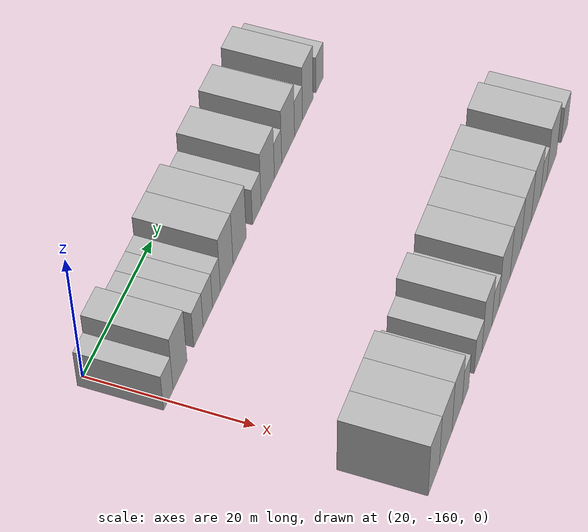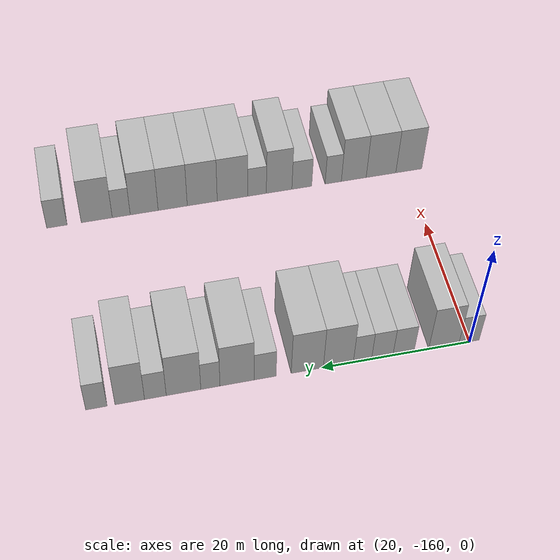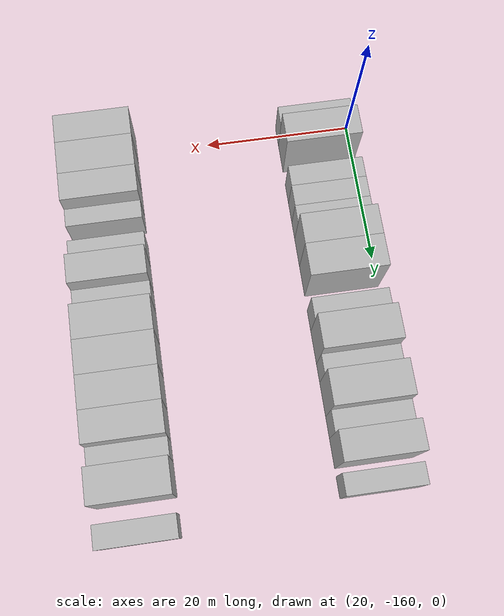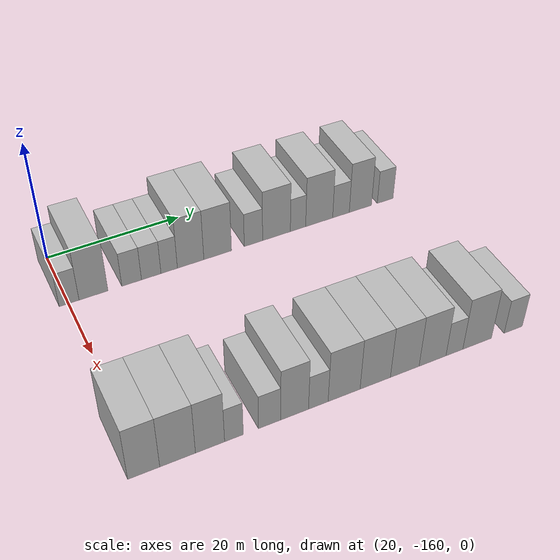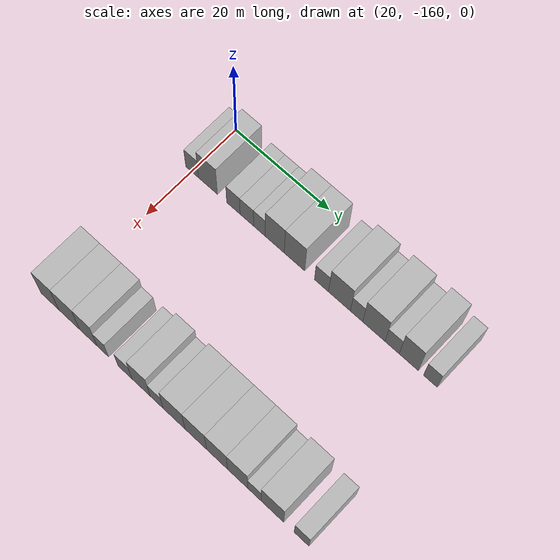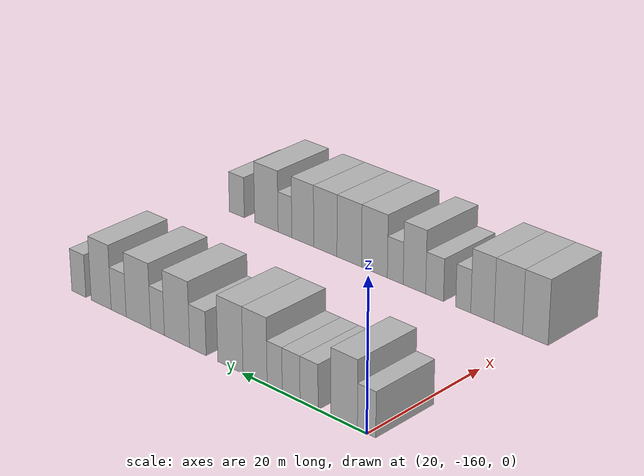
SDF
<sdf version="1.6">
 <world name="default">
  <model name="building_15">
   <static>1</static>
   <pose>25.0000 -159.9158 0 0.000000 0.000000 0.000000</pose>
   <link name="link">
    <pose>0 0 3.00 0 0 0</pose>
    <collision name="collision"><geometry><box><size>10.0000 2.7840 6.0000</size></box></geometry></collision>
    <visual name="visual">
     <cast_shadows>0</cast_shadows>
     <geometry><box><size>10.0000 2.7840 6.0000</size></box></geometry>
     <material>
      <script>
       <uri>model://HANNAS_wall/materials/scripts</uri>
       <uri>model://HANNAS_wall/materials/textures</uri>
       <name>vrc/HANNAS_wall</name>
      </script>
     </material>
    </visual>
   </link>
  </model>
  <model name="building_16">
   <static>1</static>
   <pose>25.0000 -156.4676 0 0.000000 0.000000 0.000000</pose>
   <link name="link">
    <pose>0 0 4.50 0 0 0</pose>
    <collision name="collision"><geometry><box><size>10.0000 4.1124 9.0000</size></box></geometry></collision>
    <visual name="visual">
     <cast_shadows>0</cast_shadows>
     <geometry><box><size>10.0000 4.1124 9.0000</size></box></geometry>
     <material>
      <script>
       <uri>model://HANNAS_wall/materials/scripts</uri>
       <uri>model://HANNAS_wall/materials/textures</uri>
       <name>vrc/HANNAS_wall</name>
      </script>
     </material>
    </visual>
   </link>
  </model>
  <model name="building_17">
   <static>1</static>
   <pose>25.0000 -150.9805 0 0.000000 0.000000 0.000000</pose>
   <link name="link">
    <pose>0 0 3.00 0 0 0</pose>
    <collision name="collision"><geometry><box><size>10.0000 2.8616 6.0000</size></box></geometry></collision>
    <visual name="visual">
     <cast_shadows>0</cast_shadows>
     <geometry><box><size>10.0000 2.8616 6.0000</size></box></geometry>
     <material>
      <script>
       <uri>model://HANNAS_wall/materials/scripts</uri>
       <uri>model://HANNAS_wall/materials/textures</uri>
       <name>vrc/HANNAS_wall</name>
      </script>
     </material>
    </visual>
   </link>
  </model>
  <model name="building_18">
   <static>1</static>
   <pose>25.0000 -148.1120 0 0.000000 0.000000 0.000000</pose>
   <link name="link">
    <pose>0 0 3.00 0 0 0</pose>
    <collision name="collision"><geometry><box><size>10.0000 2.8755 6.0000</size></box></geometry></collision>
    <visual name="visual">
     <cast_shadows>0</cast_shadows>
     <geometry><box><size>10.0000 2.8755 6.0000</size></box></geometry>
     <material>
      <script>
       <uri>model://HANNAS_wall/materials/scripts</uri>
       <uri>model://HANNAS_wall/materials/textures</uri>
       <name>vrc/HANNAS_wall</name>
      </script>
     </material>
    </visual>
   </link>
  </model>
  <model name="building_19">
   <static>1</static>
   <pose>25.0000 -145.4479 0 0.000000 0.000000 0.000000</pose>
   <link name="link">
    <pose>0 0 3.00 0 0 0</pose>
    <collision name="collision"><geometry><box><size>10.0000 2.4528 6.0000</size></box></geometry></collision>
    <visual name="visual">
     <cast_shadows>0</cast_shadows>
     <geometry><box><size>10.0000 2.4528 6.0000</size></box></geometry>
     <material>
      <script>
       <uri>model://HANNAS_wall/materials/scripts</uri>
       <uri>model://HANNAS_wall/materials/textures</uri>
       <name>vrc/HANNAS_wall</name>
      </script>
     </material>
    </visual>
   </link>
  </model>
  <model name="building_20">
   <static>1</static>
   <pose>25.0000 -142.2186 0 0.000000 0.000000 0.000000</pose>
   <link name="link">
    <pose>0 0 4.50 0 0 0</pose>
    <collision name="collision"><geometry><box><size>10.0000 4.0057 9.0000</size></box></geometry></collision>
    <visual name="visual">
     <cast_shadows>0</cast_shadows>
     <geometry><box><size>10.0000 4.0057 9.0000</size></box></geometry>
     <material>
      <script>
       <uri>model://HANNAS_wall/materials/scripts</uri>
       <uri>model://HANNAS_wall/materials/textures</uri>
       <name>vrc/HANNAS_wall</name>
      </script>
     </material>
    </visual>
   </link>
  </model>
  <model name="building_21">
   <static>1</static>
   <pose>25.0000 -138.0832 0 0.000000 0.000000 0.000000</pose>
   <link name="link">
    <pose>0 0 4.50 0 0 0</pose>
    <collision name="collision"><geometry><box><size>10.0000 4.2652 9.0000</size></box></geometry></collision>
    <visual name="visual">
     <cast_shadows>0</cast_shadows>
     <geometry><box><size>10.0000 4.2652 9.0000</size></box></geometry>
     <material>
      <script>
       <uri>model://HANNAS_wall/materials/scripts</uri>
       <uri>model://HANNAS_wall/materials/textures</uri>
       <name>vrc/HANNAS_wall</name>
      </script>
     </material>
    </visual>
   </link>
  </model>
  <model name="building_22">
   <static>1</static>
   <pose>25.0000 -132.5046 0 0.000000 0.000000 0.000000</pose>
   <link name="link">
    <pose>0 0 3.00 0 0 0</pose>
    <collision name="collision"><geometry><box><size>10.0000 2.8920 6.0000</size></box></geometry></collision>
    <visual name="visual">
     <cast_shadows>0</cast_shadows>
     <geometry><box><size>10.0000 2.8920 6.0000</size></box></geometry>
     <material>
      <script>
       <uri>model://HANNAS_wall/materials/scripts</uri>
       <uri>model://HANNAS_wall/materials/textures</uri>
       <name>vrc/HANNAS_wall</name>
      </script>
     </material>
    </visual>
   </link>
  </model>
  <model name="building_23">
   <static>1</static>
   <pose>25.0000 -128.8323 0 0.000000 0.000000 0.000000</pose>
   <link name="link">
    <pose>0 0 4.50 0 0 0</pose>
    <collision name="collision"><geometry><box><size>10.0000 4.4527 9.0000</size></box></geometry></collision>
    <visual name="visual">
     <cast_shadows>0</cast_shadows>
     <geometry><box><size>10.0000 4.4527 9.0000</size></box></geometry>
     <material>
      <script>
       <uri>model://HANNAS_wall/materials/scripts</uri>
       <uri>model://HANNAS_wall/materials/textures</uri>
       <name>vrc/HANNAS_wall</name>
      </script>
     </material>
    </visual>
   </link>
  </model>
  <model name="building_24">
   <static>1</static>
   <pose>25.0000 -125.3593 0 0.000000 0.000000 0.000000</pose>
   <link name="link">
    <pose>0 0 3.00 0 0 0</pose>
    <collision name="collision"><geometry><box><size>10.0000 2.4932 6.0000</size></box></geometry></collision>
    <visual name="visual">
     <cast_shadows>0</cast_shadows>
     <geometry><box><size>10.0000 2.4932 6.0000</size></box></geometry>
     <material>
      <script>
       <uri>model://HANNAS_wall/materials/scripts</uri>
       <uri>model://HANNAS_wall/materials/textures</uri>
       <name>vrc/HANNAS_wall</name>
      </script>
     </material>
    </visual>
   </link>
  </model>
  <model name="building_25">
   <static>1</static>
   <pose>25.0000 -121.8784 0 0.000000 0.000000 0.000000</pose>
   <link name="link">
    <pose>0 0 4.50 0 0 0</pose>
    <collision name="collision"><geometry><box><size>10.0000 4.4687 9.0000</size></box></geometry></collision>
    <visual name="visual">
     <cast_shadows>0</cast_shadows>
     <geometry><box><size>10.0000 4.4687 9.0000</size></box></geometry>
     <material>
      <script>
       <uri>model://HANNAS_wall/materials/scripts</uri>
       <uri>model://HANNAS_wall/materials/textures</uri>
       <name>vrc/HANNAS_wall</name>
      </script>
     </material>
    </visual>
   </link>
  </model>
  <model name="building_26">
   <static>1</static>
   <pose>25.0000 -118.2513 0 0.000000 0.000000 0.000000</pose>
   <link name="link">
    <pose>0 0 3.00 0 0 0</pose>
    <collision name="collision"><geometry><box><size>10.0000 2.7856 6.0000</size></box></geometry></collision>
    <visual name="visual">
     <cast_shadows>0</cast_shadows>
     <geometry><box><size>10.0000 2.7856 6.0000</size></box></geometry>
     <material>
      <script>
       <uri>model://HANNAS_wall/materials/scripts</uri>
       <uri>model://HANNAS_wall/materials/textures</uri>
       <name>vrc/HANNAS_wall</name>
      </script>
     </material>
    </visual>
   </link>
  </model>
  <model name="building_27">
   <static>1</static>
   <pose>25.0000 -114.9687 0 0.000000 0.000000 0.000000</pose>
   <link name="link">
    <pose>0 0 4.50 0 0 0</pose>
    <collision name="collision"><geometry><box><size>10.0000 3.7795 9.0000</size></box></geometry></collision>
    <visual name="visual">
     <cast_shadows>0</cast_shadows>
     <geometry><box><size>10.0000 3.7795 9.0000</size></box></geometry>
     <material>
      <script>
       <uri>model://HANNAS_wall/materials/scripts</uri>
       <uri>model://HANNAS_wall/materials/textures</uri>
       <name>vrc/HANNAS_wall</name>
      </script>
     </material>
    </visual>
   </link>
  </model>
  <model name="building_28">
   <static>1</static>
   <pose>25.0000 -110.7197 0 0.000000 0.000000 0.000000</pose>
   <link name="link">
    <pose>0 0 3.00 0 0 0</pose>
    <collision name="collision"><geometry><box><size>10.0000 2.7185 6.0000</size></box></geometry></collision>
    <visual name="visual">
     <cast_shadows>0</cast_shadows>
     <geometry><box><size>10.0000 2.7185 6.0000</size></box></geometry>
     <material>
      <script>
       <uri>model://HANNAS_wall/materials/scripts</uri>
       <uri>model://HANNAS_wall/materials/textures</uri>
       <name>vrc/HANNAS_wall</name>
      </script>
     </material>
    </visual>
   </link>
  </model>
  <model name="building_126">
   <static>1</static>
   <pose>55.0000 -160.4622 0 0.000000 0.000000 0.000000</pose>
   <link name="link">
    <pose>0 0 4.50 0 0 0</pose>
    <collision name="collision"><geometry><box><size>10.0000 3.9450 9.0000</size></box></geometry></collision>
    <visual name="visual">
     <cast_shadows>0</cast_shadows>
     <geometry><box><size>10.0000 3.9450 9.0000</size></box></geometry>
     <material>
      <script>
       <uri>model://HANNAS_wall/materials/scripts</uri>
       <uri>model://HANNAS_wall/materials/textures</uri>
       <name>vrc/HANNAS_wall</name>
      </script>
     </material>
    </visual>
   </link>
  </model>
  <model name="building_127">
   <static>1</static>
   <pose>55.0000 -156.2478 0 0.000000 0.000000 0.000000</pose>
   <link name="link">
    <pose>0 0 4.50 0 0 0</pose>
    <collision name="collision"><geometry><box><size>10.0000 4.4839 9.0000</size></box></geometry></collision>
    <visual name="visual">
     <cast_shadows>0</cast_shadows>
     <geometry><box><size>10.0000 4.4839 9.0000</size></box></geometry>
     <material>
      <script>
       <uri>model://HANNAS_wall/materials/scripts</uri>
       <uri>model://HANNAS_wall/materials/textures</uri>
       <name>vrc/HANNAS_wall</name>
      </script>
     </material>
    </visual>
   </link>
  </model>
  <model name="building_128">
   <static>1</static>
   <pose>55.0000 -152.1374 0 0.000000 0.000000 0.000000</pose>
   <link name="link">
    <pose>0 0 4.50 0 0 0</pose>
    <collision name="collision"><geometry><box><size>10.0000 3.7369 9.0000</size></box></geometry></collision>
    <visual name="visual">
     <cast_shadows>0</cast_shadows>
     <geometry><box><size>10.0000 3.7369 9.0000</size></box></geometry>
     <material>
      <script>
       <uri>model://HANNAS_wall/materials/scripts</uri>
       <uri>model://HANNAS_wall/materials/textures</uri>
       <name>vrc/HANNAS_wall</name>
      </script>
     </material>
    </visual>
   </link>
  </model>
  <model name="building_129">
   <static>1</static>
   <pose>55.0000 -149.0524 0 0.000000 0.000000 0.000000</pose>
   <link name="link">
    <pose>0 0 3.00 0 0 0</pose>
    <collision name="collision"><geometry><box><size>10.0000 2.4331 6.0000</size></box></geometry></collision>
    <visual name="visual">
     <cast_shadows>0</cast_shadows>
     <geometry><box><size>10.0000 2.4331 6.0000</size></box></geometry>
     <material>
      <script>
       <uri>model://HANNAS_wall/materials/scripts</uri>
       <uri>model://HANNAS_wall/materials/textures</uri>
       <name>vrc/HANNAS_wall</name>
      </script>
     </material>
    </visual>
   </link>
  </model>
  <model name="building_130">
   <static>1</static>
   <pose>55.0000 -144.3599 0 0.000000 0.000000 0.000000</pose>
   <link name="link">
    <pose>0 0 3.00 0 0 0</pose>
    <collision name="collision"><geometry><box><size>10.0000 2.9521 6.0000</size></box></geometry></collision>
    <visual name="visual">
     <cast_shadows>0</cast_shadows>
     <geometry><box><size>10.0000 2.9521 6.0000</size></box></geometry>
     <material>
      <script>
       <uri>model://HANNAS_wall/materials/scripts</uri>
       <uri>model://HANNAS_wall/materials/textures</uri>
       <name>vrc/HANNAS_wall</name>
      </script>
     </material>
    </visual>
   </link>
  </model>
  <model name="building_131">
   <static>1</static>
   <pose>55.0000 -140.9871 0 0.000000 0.000000 0.000000</pose>
   <link name="link">
    <pose>0 0 4.50 0 0 0</pose>
    <collision name="collision"><geometry><box><size>10.0000 3.7935 9.0000</size></box></geometry></collision>
    <visual name="visual">
     <cast_shadows>0</cast_shadows>
     <geometry><box><size>10.0000 3.7935 9.0000</size></box></geometry>
     <material>
      <script>
       <uri>model://HANNAS_wall/materials/scripts</uri>
       <uri>model://HANNAS_wall/materials/textures</uri>
       <name>vrc/HANNAS_wall</name>
      </script>
     </material>
    </visual>
   </link>
  </model>
  <model name="building_132">
   <static>1</static>
   <pose>55.0000 -137.7353 0 0.000000 0.000000 0.000000</pose>
   <link name="link">
    <pose>0 0 3.00 0 0 0</pose>
    <collision name="collision"><geometry><box><size>10.0000 2.7101 6.0000</size></box></geometry></collision>
    <visual name="visual">
     <cast_shadows>0</cast_shadows>
     <geometry><box><size>10.0000 2.7101 6.0000</size></box></geometry>
     <material>
      <script>
       <uri>model://HANNAS_wall/materials/scripts</uri>
       <uri>model://HANNAS_wall/materials/textures</uri>
       <name>vrc/HANNAS_wall</name>
      </script>
     </material>
    </visual>
   </link>
  </model>
  <model name="building_133">
   <static>1</static>
   <pose>55.0000 -134.1336 0 0.000000 0.000000 0.000000</pose>
   <link name="link">
    <pose>0 0 4.50 0 0 0</pose>
    <collision name="collision"><geometry><box><size>10.0000 4.4932 9.0000</size></box></geometry></collision>
    <visual name="visual">
     <cast_shadows>0</cast_shadows>
     <geometry><box><size>10.0000 4.4932 9.0000</size></box></geometry>
     <material>
      <script>
       <uri>model://HANNAS_wall/materials/scripts</uri>
       <uri>model://HANNAS_wall/materials/textures</uri>
       <name>vrc/HANNAS_wall</name>
      </script>
     </material>
    </visual>
   </link>
  </model>
  <model name="building_134">
   <static>1</static>
   <pose>55.0000 -129.7055 0 0.000000 0.000000 0.000000</pose>
   <link name="link">
    <pose>0 0 4.50 0 0 0</pose>
    <collision name="collision"><geometry><box><size>10.0000 4.3630 9.0000</size></box></geometry></collision>
    <visual name="visual">
     <cast_shadows>0</cast_shadows>
     <geometry><box><size>10.0000 4.3630 9.0000</size></box></geometry>
     <material>
      <script>
       <uri>model://HANNAS_wall/materials/scripts</uri>
       <uri>model://HANNAS_wall/materials/textures</uri>
       <name>vrc/HANNAS_wall</name>
      </script>
     </material>
    </visual>
   </link>
  </model>
  <model name="building_135">
   <static>1</static>
   <pose>55.0000 -125.4184 0 0.000000 0.000000 0.000000</pose>
   <link name="link">
    <pose>0 0 4.50 0 0 0</pose>
    <collision name="collision"><geometry><box><size>10.0000 4.2111 9.0000</size></box></geometry></collision>
    <visual name="visual">
     <cast_shadows>0</cast_shadows>
     <geometry><box><size>10.0000 4.2111 9.0000</size></box></geometry>
     <material>
      <script>
       <uri>model://HANNAS_wall/materials/scripts</uri>
       <uri>model://HANNAS_wall/materials/textures</uri>
       <name>vrc/HANNAS_wall</name>
      </script>
     </material>
    </visual>
   </link>
  </model>
  <model name="building_136">
   <static>1</static>
   <pose>55.0000 -121.3007 0 0.000000 0.000000 0.000000</pose>
   <link name="link">
    <pose>0 0 4.50 0 0 0</pose>
    <collision name="collision"><geometry><box><size>10.0000 4.0243 9.0000</size></box></geometry></collision>
    <visual name="visual">
     <cast_shadows>0</cast_shadows>
     <geometry><box><size>10.0000 4.0243 9.0000</size></box></geometry>
     <material>
      <script>
       <uri>model://HANNAS_wall/materials/scripts</uri>
       <uri>model://HANNAS_wall/materials/textures</uri>
       <name>vrc/HANNAS_wall</name>
      </script>
     </material>
    </visual>
   </link>
  </model>
  <model name="building_137">
   <static>1</static>
   <pose>55.0000 -118.0044 0 0.000000 0.000000 0.000000</pose>
   <link name="link">
    <pose>0 0 3.00 0 0 0</pose>
    <collision name="collision"><geometry><box><size>10.0000 2.5684 6.0000</size></box></geometry></collision>
    <visual name="visual">
     <cast_shadows>0</cast_shadows>
     <geometry><box><size>10.0000 2.5684 6.0000</size></box></geometry>
     <material>
      <script>
       <uri>model://HANNAS_wall/materials/scripts</uri>
       <uri>model://HANNAS_wall/materials/textures</uri>
       <name>vrc/HANNAS_wall</name>
      </script>
     </material>
    </visual>
   </link>
  </model>
  <model name="building_138">
   <static>1</static>
   <pose>55.0000 -114.5046 0 0.000000 0.000000 0.000000</pose>
   <link name="link">
    <pose>0 0 4.50 0 0 0</pose>
    <collision name="collision"><geometry><box><size>10.0000 4.4313 9.0000</size></box></geometry></collision>
    <visual name="visual">
     <cast_shadows>0</cast_shadows>
     <geometry><box><size>10.0000 4.4313 9.0000</size></box></geometry>
     <material>
      <script>
       <uri>model://HANNAS_wall/materials/scripts</uri>
       <uri>model://HANNAS_wall/materials/textures</uri>
       <name>vrc/HANNAS_wall</name>
      </script>
     </material>
    </visual>
   </link>
  </model>
  <model name="building_139">
   <static>1</static>
   <pose>55.0000 -108.8471 0 0.000000 0.000000 0.000000</pose>
   <link name="link">
    <pose>0 0 3.00 0 0 0</pose>
    <collision name="collision"><geometry><box><size>10.0000 2.8836 6.0000</size></box></geometry></collision>
    <visual name="visual">
     <cast_shadows>0</cast_shadows>
     <geometry><box><size>10.0000 2.8836 6.0000</size></box></geometry>
     <material>
      <script>
       <uri>model://HANNAS_wall/materials/scripts</uri>
       <uri>model://HANNAS_wall/materials/textures</uri>
       <name>vrc/HANNAS_wall</name>
      </script>
     </material>
    </visual>
   </link>
  </model>
 </world>
</sdf>
